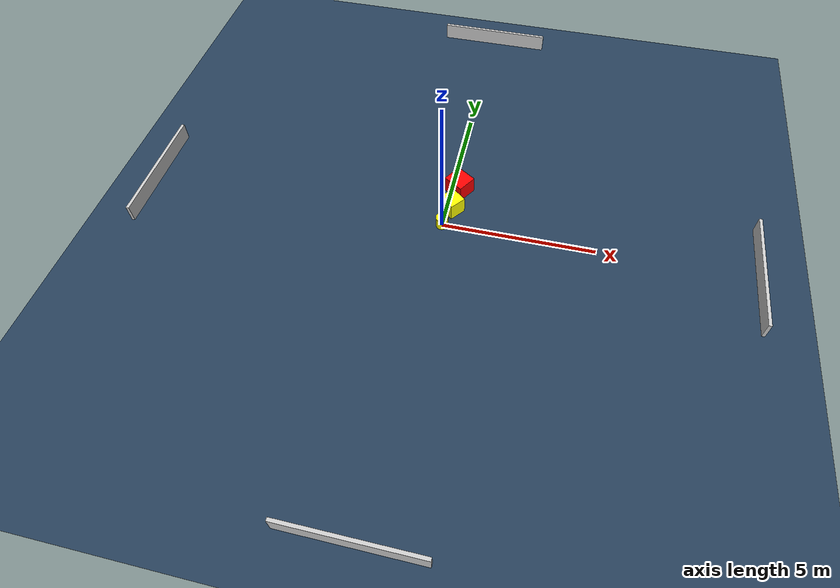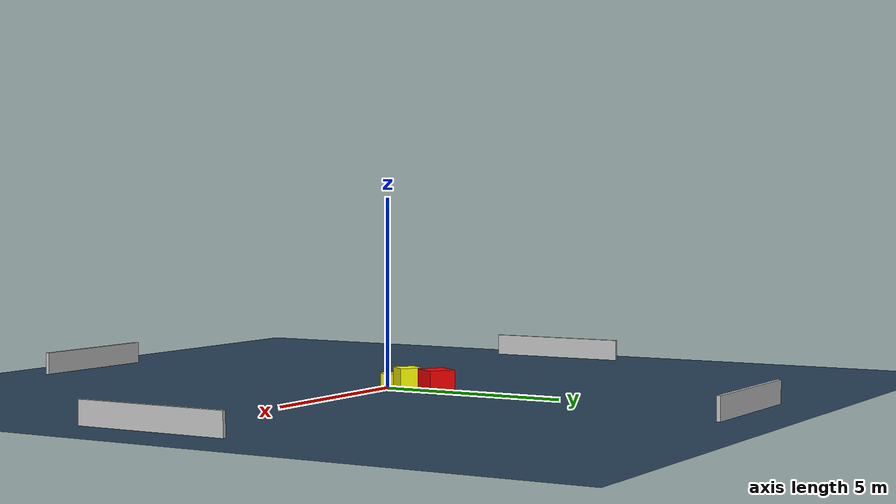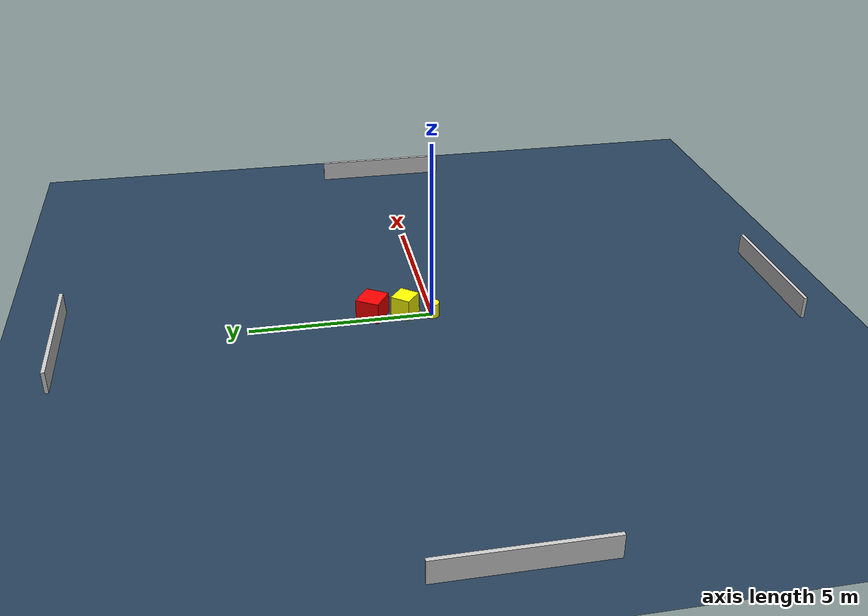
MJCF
<?xml version="1.0" ?>
<mujoco model="generated_environment">
  <option timestep="0.01" integrator="RK4" cone="elliptic"/>
  <default>
    <geom density="1"/>
  </default>
  <asset>
    <texture builtin="gradient" height="3072" name="skybox" rgb1="0.3 0.5 0.7" rgb2="0 0 0" type="skybox" width="512"/>
    <texture builtin="checker" height="300" name="groundplane" rgb1="0.2 0.3 0.4" rgb2="0.1 0.2 0.3" type="2d" width="300"/>
    <material name="groundplane" reflectance="0.2" texrepeat="5 5" texture="groundplane"/>
  </asset>
  <worldbody>
    <light dir="0 0 -1" directional="true" pos="0 0 1.5"/>
    <geom condim="3" friction="0.5 0.005 0.001" material="groundplane" name="floor" pos="0 0 0" size="0 0 0.05" type="plane"/>
    <body name="walls">
      <geom name="wall_1" condim="4" pos="-10.0 0.0 0.3" rgba="0.800000011920929 0.800000011920929 0.800000011920929 1.0" size="0.05 2.0 0.3" type="box"/>
      <geom name="wall_2" condim="4" pos="10.0 0.0 0.3" rgba="0.800000011920929 0.800000011920929 0.800000011920929 1.0" size="0.05 2.0 0.3" type="box"/>
      <geom name="wall_3" condim="4" pos="0.0 -10.0 0.3" rgba="0.800000011920929 0.800000011920929 0.800000011920929 1.0" size="2.0 0.05 0.3" type="box"/>
      <geom name="wall_4" condim="4" pos="0.0 10.0 0.3" rgba="0.800000011920929 0.800000011920929 0.800000011920929 1.0" size="2.0 0.05 0.3" type="box"/>
    </body>
    <body name="robot">
      <joint name="joint_x" type="slide" pos="0 0 0" axis="1 0 0"/>
      <joint name="joint_y" type="slide" pos="0 0 0" axis="0 1 0"/>
      <geom name="robot" type="cylinder" pos="0.0 0.0 0.2" size="0.2 0.2 0.0" mass="5.0" friction="1.0 0.005 0.0001" condim="4" rgba="1.0 1.0 0.0 1.0"/>
    </body>
    <body name="obstacle_1_movable">
      <geom name="obstacle_1_movable" condim="4" pos="0.19168463953772746 0.718574377137384 0.3" euler="0 0 231.4464728826715" friction="0.0 0.005 0.001" rgba="1.0 1.0 0.0 1.0" size="0.281654361294156 0.29568588687097364 0.3" type="box" mass="0.1"/>
      <joint type="free"/>
    </body>
    <body name="obstacle_2_static">
      <geom name="obstacle_2_static" condim="4" pos="0.25157778285340526 1.6180193549665858 0.3" euler="0 0 57.40300367682073" friction="0.0 0.005 0.001" rgba="1.0 0.0 0.0 1.0" size="0.3345623175081988 0.3597382470311852 0.3" type="box"/>
    </body>
  </worldbody>
  <actuator>
    <motor name="actuator_x" joint="joint_x" gear="1" ctrlrange="-1 1"/>
    <motor name="actuator_y" joint="joint_y" gear="1" ctrlrange="-1 1"/>
  </actuator>
</mujoco>
